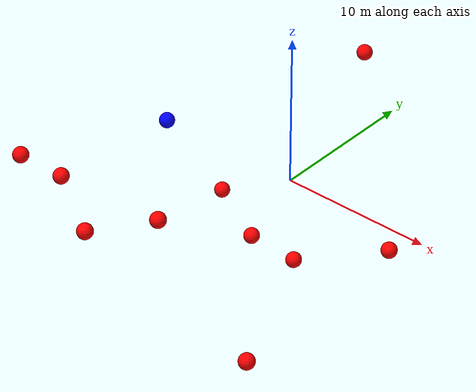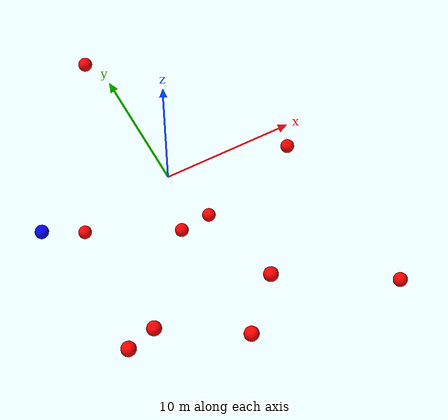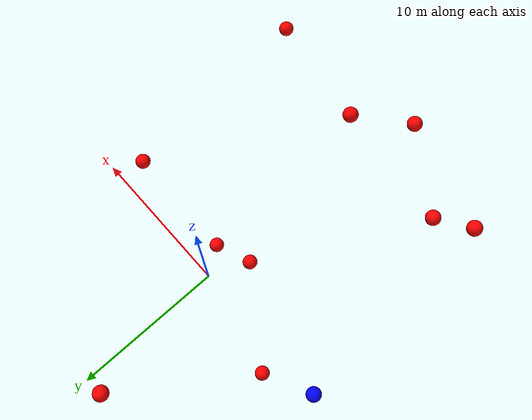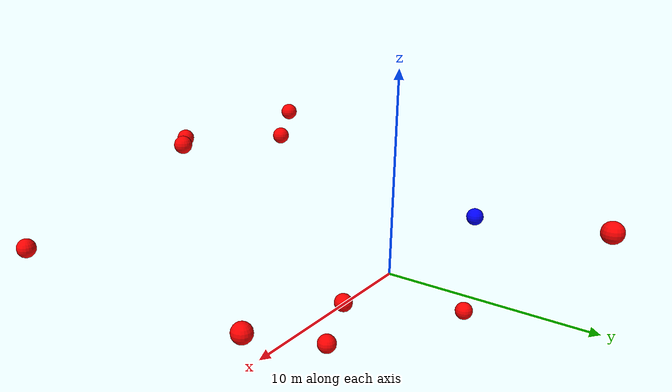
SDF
<?xml version="1.0" ?>
<sdf version="1.8">
    <world name="3d_world">
        <physics name="1ms" type="ode">
            <max_step_size>0.001</max_step_size>
            <real_time_factor>1.0</real_time_factor>
            <real_time_update_rate>1000.0</real_time_update_rate>
        </physics>
        <gravity>0 0 0</gravity>

        <plugin
            filename="gz-sim-physics-system"
            name="gz::sim::v8::systems::Physics">
        </plugin>
        <plugin
            filename="libignition-gazebo-user-commands-system.so"
            name="ignition::gazebo::systems::UserCommands">
        </plugin>
        <plugin
            filename="gz-sim-scene-broadcaster-system"
            name="gz::sim::systems::SceneBroadcaster">
        </plugin>
        <plugin
            filename="gz-sim-sensors-system"
            name="gz::sim::systems::Sensors">
            <render_engine>ogre2</render_engine>
        </plugin>

        <light type="directional" name="sun">
            <cast_shadows>true</cast_shadows>
            <pose>0 0 10 0 0 0</pose>
            <diffuse>0.8 0.8 0.8 1</diffuse>
            <specular>0.2 0.2 0.2 1</specular>
            <attenuation>
                <range>1000</range>
                <constant>0.9</constant>
                <linear>0.01</linear>
                <quadratic>0.001</quadratic>
            </attenuation>
            <direction>-0.5 0.1 -0.9</direction>
        </light>

        <!-- AGENTE -->
        <model name='agente' canonical_link='chassis'>
            <pose relative_to='world'>-10.0 0 0.0 0 0 0</pose>
            <link name='chassis'>
                <pose relative_to='__model__'>0.0 0 0.0 0 0 0</pose>
                <inertial>
                    <mass>1.14395</mass>
                    <inertia>
                        <ixx>0.095329</ixx>
                        <ixy>0</ixy>
                        <ixz>0</ixz>
                        <iyy>0.381317</iyy>
                        <iyz>0</iyz>
                        <izz>0.476646</izz>
                    </inertia>
                </inertial>
                <visual name='visual'>
                    <geometry>
                        <sphere>
                            <radius>0.5</radius>
                        </sphere>
                    </geometry>
                    <material>
                        <ambient>0.0 0.0 1.0 1</ambient>
                        <diffuse>0.0 0.0 1.0 1</diffuse>
                        <specular>0.0 0.0 1.0 1</specular>
                    </material>
                </visual>
                <collision name='collision'>
                    <geometry>
                        <sphere>
                            <radius>0.5</radius>
                        </sphere>
                    </geometry>
                </collision>
                <enable_gravity>false</enable_gravity>
            </link>

            <link name='lidar_link'>
                <pose relative_to='chassis'>0.0 0 0.1 0 0 0</pose>
                <inertial>
                    <mass>0.1</mass>
                    <inertia>
                        <ixx>0.000166667</ixx>
                        <iyy>0.000166667</iyy>
                        <izz>0.000166667</izz>
                    </inertia>
                </inertial>
                <collision name='collision'>
                    <geometry>
                        <cylinder>
                            <radius>0.05</radius>
                            <length>0.1</length>
                        </cylinder>
                    </geometry>
                </collision>
                <visual name='visual'>
                    <geometry>
                        <cylinder>
                            <radius>0.05</radius>
                            <length>0.1</length>
                        </cylinder>
                    </geometry>
                    <material>
                        <ambient>0.0 1.0 0.0 1</ambient>
                        <diffuse>0.0 1.0 0.0 1</diffuse>
                        <specular>0.0 1.0 0.0 1</specular>
                    </material>
                </visual>
                <sensor name="lidar" type="gpu_lidar">
                    <topic>scan</topic>
                    <update_rate>10</update_rate>
                    <lidar>
                        <scan>
                            <horizontal>
                                <samples>5000</samples>
                                <resolution>1</resolution>
                                <min_angle>-3.14159</min_angle>
                                <max_angle>3.14159</max_angle>
                            </horizontal>
                        </scan>
                        <range>
                            <min>0.1</min>
                            <max>10.0</max>
                            <resolution>0.01</resolution>
                        </range>
                    </lidar>
                    <visualize>true</visualize>
                    <always_on>true</always_on>
                    <update_rate>10</update_rate>
                    <pose_frame>lidar</pose_frame>
                </sensor>
                <enable_gravity>false</enable_gravity>
            </link>

            <joint name="lidar_joint" type="fixed">
                <parent>chassis</parent>
                <child>lidar_link</child>
            </joint>

            <plugin
                filename="ignition-gazebo-joint-state-publisher-system"
                name="ignition::gazebo::systems::JointStatePublisher">
            </plugin>
            <plugin
                filename="ignition-gazebo-odometry-publisher-system"
                name="ignition::gazebo::systems::OdometryPublisher">
                <dimensions>3</dimensions>
            </plugin>
            <plugin
                filename="ignition-gazebo-velocity-control-system"
                name="ignition::gazebo::systems::VelocityControl">
                <initial_linear>0.0 0 0</initial_linear>
                <initial_angular>0 0 0.0</initial_angular>
            </plugin>
            <plugin
                filename="libignition-gazebo-pose-publisher-system.so"
                name="ignition::gazebo::systems::PosePublisher">
                <topic>/agente/pose</topic>
                <frame_id>agente</frame_id>
                <update_rate>30</update_rate>
            </plugin>
        </model>

        <!-- OBSTACLE 1 -->
        <model name='obstacle_1' canonical_link='obstacle'>
            <static>false</static>
            <pose relative_to='world'>0.97 -12.92 4.65 0 0 0</pose>
            <link name='obstacle'>
                <pose relative_to='__model__'>0.0 0 0.0 0 0 0</pose>
                <visual name='visual'>
                    <geometry>
                        <sphere>
                            <radius>0.50</radius>
                        </sphere>
                    </geometry>
                    <material>
                        <ambient>1.0 0.0 0.0 1</ambient>
                        <diffuse>1.0 0.0 0.0 1</diffuse>
                        <specular>1.0 0.0 0.0 1</specular>
                    </material>
                </visual>
                <collision name='collision'>
                    <geometry>
                        <sphere>
                            <radius>0.50</radius>
                        </sphere>
                    </geometry>
                </collision>
                <enable_gravity>false</enable_gravity>
            </link>

            <plugin
                filename="ignition-gazebo-velocity-control-system"
                name="ignition::gazebo::systems::VelocityControl">
                <initial_linear>-0.11 1.88 -0.68</initial_linear>
                <initial_angular>0 0 0</initial_angular>
            </plugin>

            <plugin
                filename="ignition-gazebo-odometry-publisher-system"
                name="ignition::gazebo::systems::OdometryPublisher">
                <dimensions>3</dimensions>
            </plugin>
        </model>

        <!-- OBSTACLE 2 -->
        <model name='obstacle_2' canonical_link='obstacle'>
            <static>false</static>
            <pose relative_to='world'>-9.37 -13.38 4.68 0 0 0</pose>
            <link name='obstacle'>
                <pose relative_to='__model__'>0.0 0 0.0 0 0 0</pose>
                <visual name='visual'>
                    <geometry>
                        <sphere>
                            <radius>0.50</radius>
                        </sphere>
                    </geometry>
                    <material>
                        <ambient>1.0 0.0 0.0 1</ambient>
                        <diffuse>1.0 0.0 0.0 1</diffuse>
                        <specular>1.0 0.0 0.0 1</specular>
                    </material>
                </visual>
                <collision name='collision'>
                    <geometry>
                        <sphere>
                            <radius>0.50</radius>
                        </sphere>
                    </geometry>
                </collision>
                <enable_gravity>false</enable_gravity>
            </link>

            <plugin
                filename="ignition-gazebo-velocity-control-system"
                name="ignition::gazebo::systems::VelocityControl">
                <initial_linear>1.43 1.32 -0.46</initial_linear>
                <initial_angular>0 0 0</initial_angular>
            </plugin>

            <plugin
                filename="ignition-gazebo-odometry-publisher-system"
                name="ignition::gazebo::systems::OdometryPublisher">
                <dimensions>3</dimensions>
            </plugin>
        </model>

        <!-- OBSTACLE 3 -->
        <model name='obstacle_3' canonical_link='obstacle'>
            <static>false</static>
            <pose relative_to='world'>-0.52 -2.98 -2.71 0 0 0</pose>
            <link name='obstacle'>
                <pose relative_to='__model__'>0.0 0 0.0 0 0 0</pose>
                <visual name='visual'>
                    <geometry>
                        <sphere>
                            <radius>0.50</radius>
                        </sphere>
                    </geometry>
                    <material>
                        <ambient>1.0 0.0 0.0 1</ambient>
                        <diffuse>1.0 0.0 0.0 1</diffuse>
                        <specular>1.0 0.0 0.0 1</specular>
                    </material>
                </visual>
                <collision name='collision'>
                    <geometry>
                        <sphere>
                            <radius>0.50</radius>
                        </sphere>
                    </geometry>
                </collision>
                <enable_gravity>false</enable_gravity>
            </link>

            <plugin
                filename="ignition-gazebo-velocity-control-system"
                name="ignition::gazebo::systems::VelocityControl">
                <initial_linear>-1.25 1.16 1.05</initial_linear>
                <initial_angular>0 0 0</initial_angular>
            </plugin>

            <plugin
                filename="ignition-gazebo-odometry-publisher-system"
                name="ignition::gazebo::systems::OdometryPublisher">
                <dimensions>3</dimensions>
            </plugin>
        </model>

        <!-- OBSTACLE 4 -->
        <model name='obstacle_4' canonical_link='obstacle'>
            <static>false</static>
            <pose relative_to='world'>-7.16 -12.35 3.64 0 0 0</pose>
            <link name='obstacle'>
                <pose relative_to='__model__'>0.0 0 0.0 0 0 0</pose>
                <visual name='visual'>
                    <geometry>
                        <sphere>
                            <radius>0.50</radius>
                        </sphere>
                    </geometry>
                    <material>
                        <ambient>1.0 0.0 0.0 1</ambient>
                        <diffuse>1.0 0.0 0.0 1</diffuse>
                        <specular>1.0 0.0 0.0 1</specular>
                    </material>
                </visual>
                <collision name='collision'>
                    <geometry>
                        <sphere>
                            <radius>0.50</radius>
                        </sphere>
                    </geometry>
                </collision>
                <enable_gravity>false</enable_gravity>
            </link>

            <plugin
                filename="ignition-gazebo-velocity-control-system"
                name="ignition::gazebo::systems::VelocityControl">
                <initial_linear>0.91 1.71 -0.50</initial_linear>
                <initial_angular>0 0 0</initial_angular>
            </plugin>

            <plugin
                filename="ignition-gazebo-odometry-publisher-system"
                name="ignition::gazebo::systems::OdometryPublisher">
                <dimensions>3</dimensions>
            </plugin>
        </model>

        <!-- OBSTACLE 5 -->
        <model name='obstacle_5' canonical_link='obstacle'>
            <static>false</static>
            <pose relative_to='world'>-2.03 -15.76 4.00 0 0 0</pose>
            <link name='obstacle'>
                <pose relative_to='__model__'>0.0 0 0.0 0 0 0</pose>
                <visual name='visual'>
                    <geometry>
                        <sphere>
                            <radius>0.50</radius>
                        </sphere>
                    </geometry>
                    <material>
                        <ambient>1.0 0.0 0.0 1</ambient>
                        <diffuse>1.0 0.0 0.0 1</diffuse>
                        <specular>1.0 0.0 0.0 1</specular>
                    </material>
                </visual>
                <collision name='collision'>
                    <geometry>
                        <sphere>
                            <radius>0.50</radius>
                        </sphere>
                    </geometry>
                </collision>
                <enable_gravity>false</enable_gravity>
            </link>

            <plugin
                filename="ignition-gazebo-velocity-control-system"
                name="ignition::gazebo::systems::VelocityControl">
                <initial_linear>0.41 1.90 -0.48</initial_linear>
                <initial_angular>0 0 0</initial_angular>
            </plugin>

            <plugin
                filename="ignition-gazebo-odometry-publisher-system"
                name="ignition::gazebo::systems::OdometryPublisher">
                <dimensions>3</dimensions>
            </plugin>
        </model>

        <!-- OBSTACLE 6 -->
        <model name='obstacle_6' canonical_link='obstacle'>
            <static>false</static>
            <pose relative_to='world'>9.77 -15.52 0.68 0 0 0</pose>
            <link name='obstacle'>
                <pose relative_to='__model__'>0.0 0 0.0 0 0 0</pose>
                <visual name='visual'>
                    <geometry>
                        <sphere>
                            <radius>0.50</radius>
                        </sphere>
                    </geometry>
                    <material>
                        <ambient>1.0 0.0 0.0 1</ambient>
                        <diffuse>1.0 0.0 0.0 1</diffuse>
                        <specular>1.0 0.0 0.0 1</specular>
                    </material>
                </visual>
                <collision name='collision'>
                    <geometry>
                        <sphere>
                            <radius>0.50</radius>
                        </sphere>
                    </geometry>
                </collision>
                <enable_gravity>false</enable_gravity>
            </link>

            <plugin
                filename="ignition-gazebo-velocity-control-system"
                name="ignition::gazebo::systems::VelocityControl">
                <initial_linear>-0.98 1.74 -0.08</initial_linear>
                <initial_angular>0 0 0</initial_angular>
            </plugin>

            <plugin
                filename="ignition-gazebo-odometry-publisher-system"
                name="ignition::gazebo::systems::OdometryPublisher">
                <dimensions>3</dimensions>
            </plugin>
        </model>

        <!-- OBSTACLE 7 -->
        <model name='obstacle_7' canonical_link='obstacle'>
            <static>false</static>
            <pose relative_to='world'>2.14 -2.19 -3.68 0 0 0</pose>
            <link name='obstacle'>
                <pose relative_to='__model__'>0.0 0 0.0 0 0 0</pose>
                <visual name='visual'>
                    <geometry>
                        <sphere>
                            <radius>0.50</radius>
                        </sphere>
                    </geometry>
                    <material>
                        <ambient>1.0 0.0 0.0 1</ambient>
                        <diffuse>1.0 0.0 0.0 1</diffuse>
                        <specular>1.0 0.0 0.0 1</specular>
                    </material>
                </visual>
                <collision name='collision'>
                    <geometry>
                        <sphere>
                            <radius>0.50</radius>
                        </sphere>
                    </geometry>
                </collision>
                <enable_gravity>false</enable_gravity>
            </link>

            <plugin
                filename="ignition-gazebo-velocity-control-system"
                name="ignition::gazebo::systems::VelocityControl">
                <initial_linear>-0.10 0.47 0.79</initial_linear>
                <initial_angular>0 0 0</initial_angular>
            </plugin>

            <plugin
                filename="ignition-gazebo-odometry-publisher-system"
                name="ignition::gazebo::systems::OdometryPublisher">
                <dimensions>3</dimensions>
            </plugin>
        </model>

        <!-- OBSTACLE 8 -->
        <model name='obstacle_8' canonical_link='obstacle'>
            <static>false</static>
            <pose relative_to='world'>8.96 -1.79 0.13 0 0 0</pose>
            <link name='obstacle'>
                <pose relative_to='__model__'>0.0 0 0.0 0 0 0</pose>
                <visual name='visual'>
                    <geometry>
                        <sphere>
                            <radius>0.50</radius>
                        </sphere>
                    </geometry>
                    <material>
                        <ambient>1.0 0.0 0.0 1</ambient>
                        <diffuse>1.0 0.0 0.0 1</diffuse>
                        <specular>1.0 0.0 0.0 1</specular>
                    </material>
                </visual>
                <collision name='collision'>
                    <geometry>
                        <sphere>
                            <radius>0.50</radius>
                        </sphere>
                    </geometry>
                </collision>
                <enable_gravity>false</enable_gravity>
            </link>

            <plugin
                filename="ignition-gazebo-velocity-control-system"
                name="ignition::gazebo::systems::VelocityControl">
                <initial_linear>-0.66 0.30 -0.02</initial_linear>
                <initial_angular>0 0 0</initial_angular>
            </plugin>

            <plugin
                filename="ignition-gazebo-odometry-publisher-system"
                name="ignition::gazebo::systems::OdometryPublisher">
                <dimensions>3</dimensions>
            </plugin>
        </model>

        <!-- OBSTACLE 9 -->
        <model name='obstacle_9' canonical_link='obstacle'>
            <static>false</static>
            <pose relative_to='world'>-1.91 9.45 3.82 0 0 0</pose>
            <link name='obstacle'>
                <pose relative_to='__model__'>0.0 0 0.0 0 0 0</pose>
                <visual name='visual'>
                    <geometry>
                        <sphere>
                            <radius>0.50</radius>
                        </sphere>
                    </geometry>
                    <material>
                        <ambient>1.0 0.0 0.0 1</ambient>
                        <diffuse>1.0 0.0 0.0 1</diffuse>
                        <specular>1.0 0.0 0.0 1</specular>
                    </material>
                </visual>
                <collision name='collision'>
                    <geometry>
                        <sphere>
                            <radius>0.50</radius>
                        </sphere>
                    </geometry>
                </collision>
                <enable_gravity>false</enable_gravity>
            </link>

            <plugin
                filename="ignition-gazebo-velocity-control-system"
                name="ignition::gazebo::systems::VelocityControl">
                <initial_linear>1.08 -1.56 -0.63</initial_linear>
                <initial_angular>0 0 0</initial_angular>
            </plugin>

            <plugin
                filename="ignition-gazebo-odometry-publisher-system"
                name="ignition::gazebo::systems::OdometryPublisher">
                <dimensions>3</dimensions>
            </plugin>
        </model>

        <!-- OBSTACLE 10 -->
        <model name='obstacle_10' canonical_link='obstacle'>
            <static>false</static>
            <pose relative_to='world'>-6.54 1.25 -4.38 0 0 0</pose>
            <link name='obstacle'>
                <pose relative_to='__model__'>0.0 0 0.0 0 0 0</pose>
                <visual name='visual'>
                    <geometry>
                        <sphere>
                            <radius>0.50</radius>
                        </sphere>
                    </geometry>
                    <material>
                        <ambient>1.0 0.0 0.0 1</ambient>
                        <diffuse>1.0 0.0 0.0 1</diffuse>
                        <specular>1.0 0.0 0.0 1</specular>
                    </material>
                </visual>
                <collision name='collision'>
                    <geometry>
                        <sphere>
                            <radius>0.50</radius>
                        </sphere>
                    </geometry>
                </collision>
                <enable_gravity>false</enable_gravity>
            </link>

            <plugin
                filename="ignition-gazebo-velocity-control-system"
                name="ignition::gazebo::systems::VelocityControl">
                <initial_linear>1.89 -0.18 0.62</initial_linear>
                <initial_angular>0 0 0</initial_angular>
            </plugin>

            <plugin
                filename="ignition-gazebo-odometry-publisher-system"
                name="ignition::gazebo::systems::OdometryPublisher">
                <dimensions>3</dimensions>
            </plugin>
        </model>

    </world>
</sdf>
